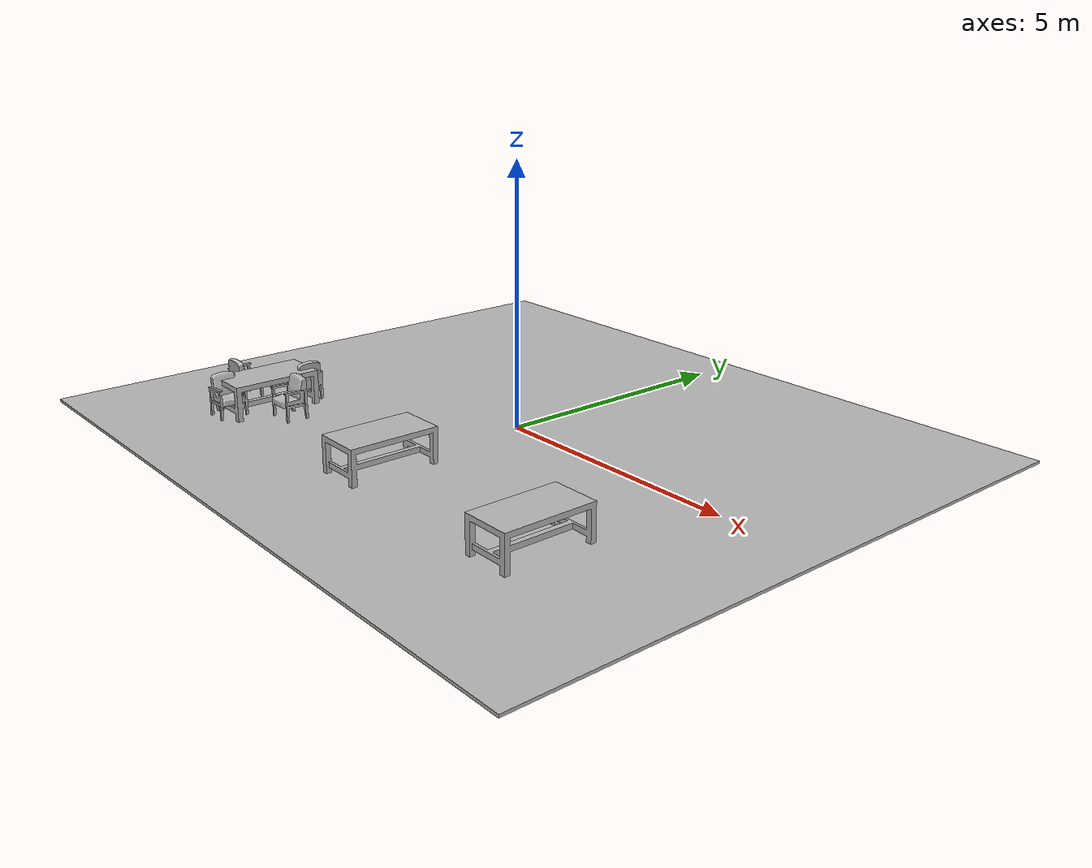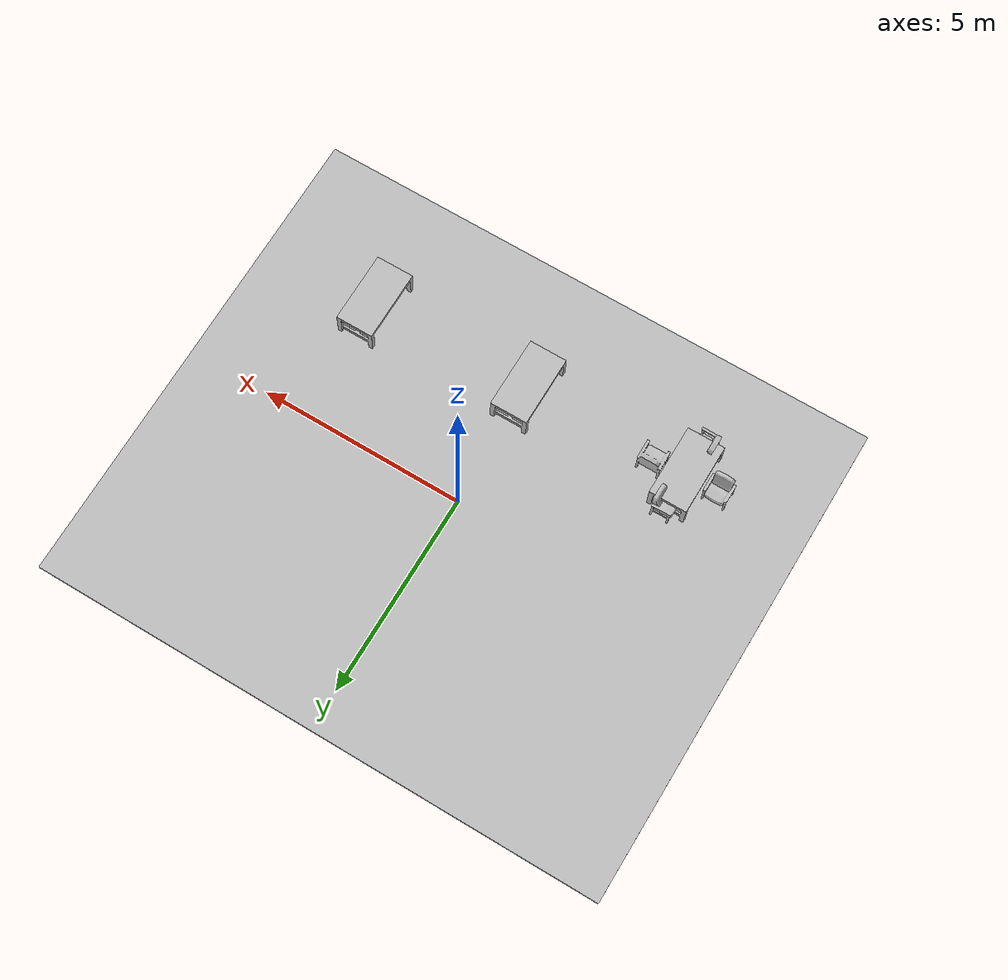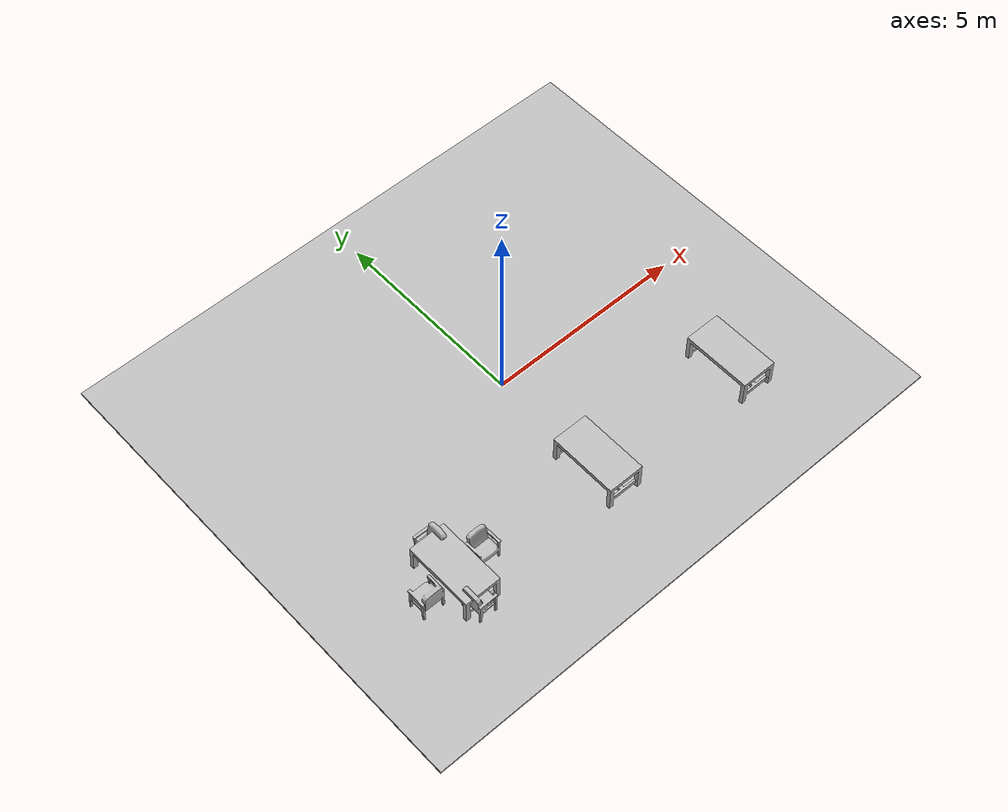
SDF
<?xml version="1.0" ?>
<sdf version="1.9">
  <world name="mcdonalds_fixed">

    <!-- SYSTEM PLUGINS -->
    <plugin filename="gz-sim-physics-system" name="gz::sim::systems::Physics"/>
    <plugin filename="gz-sim-scene-broadcaster-system" name="gz::sim::systems::SceneBroadcaster"/>
    <plugin filename="gz-sim-user-commands-system" name="gz::sim::systems::UserCommands"/>
    <plugin filename="gz-sim-sensors-system" name="gz::sim::systems::Sensors">
      <render_engine>ogre2</render_engine>
    </plugin>

    <!-- PHYSICS (FIXED) -->
    <physics name="1ms" type="dart">
      <max_step_size>0.004</max_step_size>
      <real_time_factor>1.0</real_time_factor>
    </physics>

    <!-- SCENE -->
    <scene>
      <ambient>0.6 0.6 0.6 1</ambient>
      <background>0.4 0.4 0.4 1</background>
      <shadows>true</shadows>
    </scene>

    <!-- LIGHT -->
    <light name="sun" type="directional">
      <pose>0 0 10 0 0 0</pose>
      <diffuse>1 1 1 1</diffuse>
      <direction>-0.5 0.1 -1</direction>
    </light>

    <!-- FLOOR -->
    <model name="floor">
      <static>true</static>
      <pose>0 0 -0.025 0 0 0</pose>
      <link name="link">
        <collision name="col">
          <geometry><box><size>14 12 0.05</size></box></geometry>
        </collision>
        <visual name="vis">
          <geometry><box><size>14 12 0.05</size></box></geometry>
        </visual>
      </link>
    </model>

    <!-- WALLS -->
    <model name="walls">
      <static>true</static>
      <link name="link">
        <collision name="c1"><pose>0 6 1.9 0 0 0</pose><geometry><box><size>14 0.2 3.8</size></box></geometry></collision>
        <collision name="c2"><pose>0 -6 1.9 0 0 0</pose><geometry><box><size>14 0.2 3.8</size></box></geometry></collision>
        <collision name="c3"><pose>7 0 1.9 0 0 0</pose><geometry><box><size>0.2 12 3.8</size></box></geometry></collision>
        <collision name="c4"><pose>-7 0 1.9 0 0 0</pose><geometry><box><size>0.2 12 3.8</size></box></geometry></collision>
      </link>
    </model>

    <!-- TABLES (FIXED URI) -->
    <include>
      <uri>https://fuel.gazebosim.org/1.0/openrobotics/models/Table</uri>
      <pose>-4 -3 0 0 0 0</pose>
    </include>

    <include>
      <uri>https://fuel.gazebosim.org/1.0/openrobotics/models/Table</uri>
      <pose>0 -3 0 0 0 0</pose>
    </include>

    <include>
      <uri>https://fuel.gazebosim.org/1.0/openrobotics/models/Table</uri>
      <pose>4 -3 0 0 0 0</pose>
    </include>

    <!-- CHAIRS (SPACING FIXED) -->
    <include>
      <uri>https://fuel.gazebosim.org/1.0/openrobotics/models/Chair</uri>
      <pose>-4 -2.2 0 0 0 3.14</pose>
    </include>

    <include>
      <uri>https://fuel.gazebosim.org/1.0/openrobotics/models/Chair</uri>
      <pose>-4 -3.8 0 0 0 0</pose>
    </include>

    <include>
      <uri>https://fuel.gazebosim.org/1.0/openrobotics/models/Chair</uri>
      <pose>-3.2 -3 0 0 0 -1.57</pose>
    </include>

    <include>
      <uri>https://fuel.gazebosim.org/1.0/openrobotics/models/Chair</uri>
      <pose>-4.8 -3 0 0 0 1.57</pose>
    </include>

  </world>
</sdf>

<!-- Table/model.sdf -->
<sdf version="1.5">
  <model name="Table">
    <link name="link">
      <pose>0 0 0 0 0 1.57</pose>

        <visual name="visual">
          <geometry>
            <mesh><uri>model://Table/meshes/table.obj</uri></mesh>
          </geometry>
        </visual>

        <collision name="collision">
          <geometry>
            <mesh><uri>model://Table/meshes/table.obj</uri></mesh>
          </geometry>
        </collision>

    </link>
  </model>
</sdf>

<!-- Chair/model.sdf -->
<sdf version="1.6">
  <model name='Chair'>
    <link name="body">
      <pose>0 0 0 0 0 1.5708</pose>

      <visual name="visual">
        <geometry>
          <mesh>
            <uri>model://Chair/meshes/Chair.obj</uri>
            <scale>0.00817 0.00817 0.00817</scale>
          </mesh>
        </geometry>
      </visual>

      <collision name="collision">
        <geometry>
          <mesh>
            <uri>model://Chair/meshes/Chair.obj</uri>
            <scale>0.00817 0.00817 0.00817</scale>
          </mesh>
        </geometry>
      </collision>

    </link>
  </model>
</sdf>
